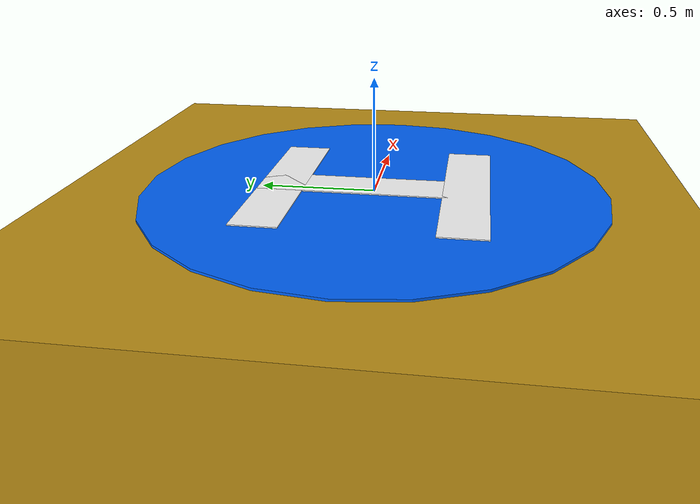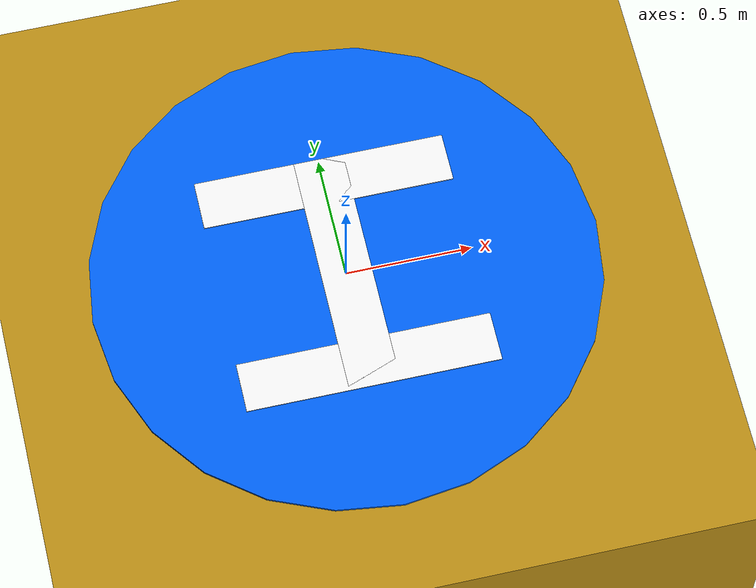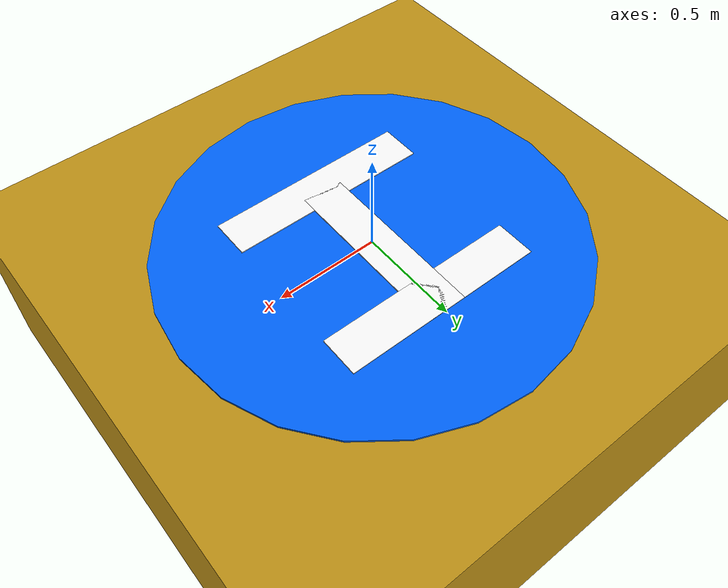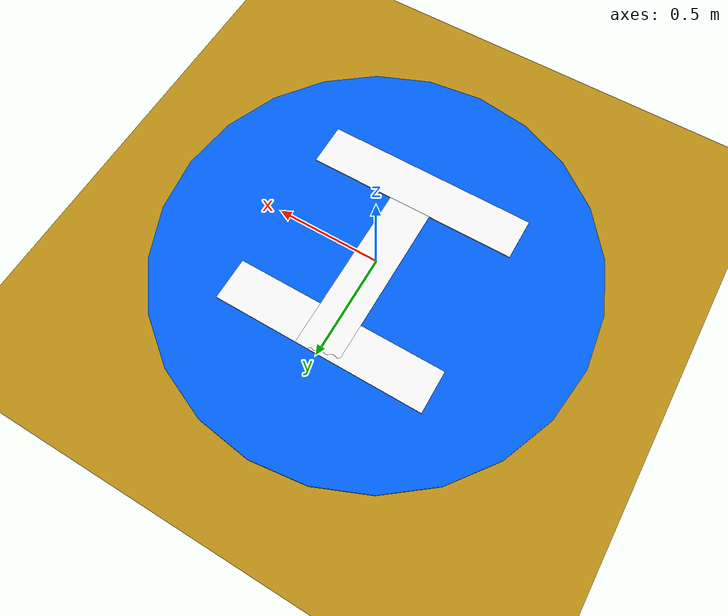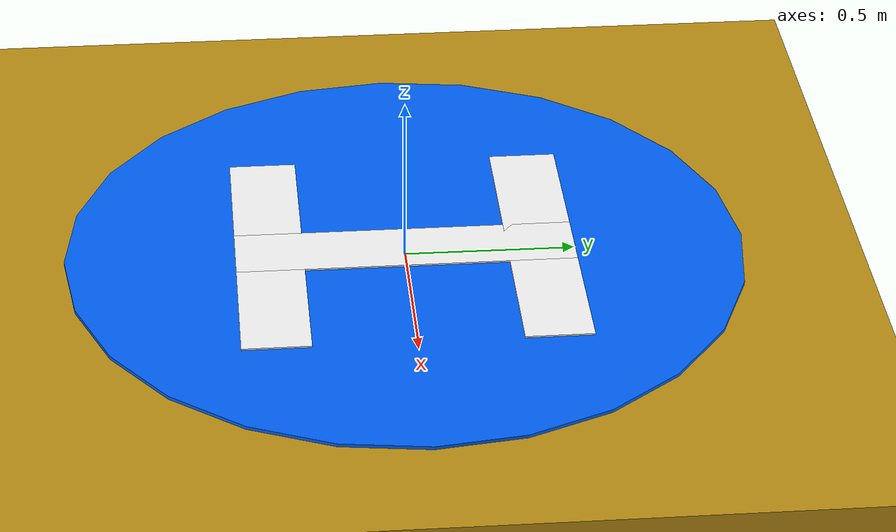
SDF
<?xml version="1.0" ?>
<sdf version="1.6">

<world name="tatami world">

<!-- Area -->
<scene>
    <ambient>0.5 0.5 0.5 1.0</ambient>
    <shadows>true</shadows>
    <origin_visual>false</origin_visual>
</scene>

<plugin name="World" filename="libWorld.so" />

<!-- iluminación básica -->
<include>
    <uri>model://sun</uri>
</include>

<!-- Area de juego -->
<include>
    <name>floor</name>
    <uri>../models/DC/floor</uri>
</include>
<include>
    <name>tatami</name>
    <pose>0 0 -0.49 0 0 0</pose>
    <uri>../models/DC/tatami</uri>
</include>

<include>
    <name>vertiport</name>
    <pose>0 0 0 0 0 0</pose>
    <uri>../models/UAM/vertiport_H</uri>
</include>

<!-- Lights -->

<!-- Own physics settings to speed up simulation -->
<physics type='ode'>

    <max_step_size>0.01</max_step_size>
    <!-- default: 0.001 segundos simulados / paso de simulación -->

    <real_time_update_rate>100</real_time_update_rate>
    <!-- default: 1000 ciclos de simulación / segundo real -->

</physics>

<!-- Interface -->
<gui fullscreen='0'>
    <camera name='user_camera'>

      <pose>10 -11 3 0 0.2 2.3</pose>

      <view_controller>orbit</view_controller>

    </camera>
</gui>

<!-- Coordinates -->

</world>
</sdf>

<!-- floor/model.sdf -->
<sdf version="1.5">

<model name="ground_plane">

<static>true</static>

<link name="link">

  <collision name="collision">

    <geometry>
      <plane>
        <normal>0 0 1</normal>
        <size>200 200</size>
      </plane>
    </geometry>

    <surface>
      <friction>
        <ode>
          <mu>100.0</mu>
          <mu2>50.0</mu2>
          <slip1>0.0</slip1>
          <slip2>0.0</slip2>
        </ode>
      </friction>
    </surface>

  </collision>

  <visual name="visual">

    <cast_shadows>true</cast_shadows>

    <geometry>
      <plane>
        <normal>0 0 1</normal>
        <size>200 200</size>
      </plane>
    </geometry>
    <material>
        <ambient>0.5 0.5 0.5 1</ambient>
        <diffuse>0.5 0.5 0.5 1</diffuse>
    </material>

  </visual>

</link>

</model>
</sdf>

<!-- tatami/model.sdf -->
<sdf version="1.7">

<model name="tatami_model">

  <static>true</static>

  <link name="link">

    <collision name="collision">

      <geometry>
        <box>
          <size>10 10 1</size>
        </box>
      </geometry>

      <surface>
        <friction>
          <ode>
            <mu>100.0</mu>
            <mu2>50.0</mu2>
            <slip1>0.0</slip1>
            <slip2>0.0</slip2>
          </ode>
        </friction>
      </surface>

    </collision>

    <visual name="visual">

      <cast_shadows>true</cast_shadows>

      <geometry>
        <box>
          <size>10 10 1</size>
        </box>
      </geometry>
      <material>
          <ambient>0.76 0.58 0.09 1</ambient>
          <diffuse>0.76 0.58 0.09 1</diffuse>
      </material>

    </visual>

  </link>

</model>
</sdf>

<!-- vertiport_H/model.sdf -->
<sdf version="1.7">

<model name="VertiPort">

<static>true</static>

<link name='link'>

<visual name='barra_izq'>
    <pose>0 -0.4 0.02 0 0 0</pose>
    <geometry>
      <box>
        <size>1 .2 .01</size>
      </box>
    </geometry>
    <material>
      <ambient>1 1 1 1</ambient>
      <diffuse>1 1 1 1</diffuse>
    </material>
</visual>

<visual name='barra_der'>
  <pose>0 0.4 0.02 0 0 0</pose>
  <geometry>
    <box>
      <size>1 .2 .01</size>
    </box>
  </geometry>
  <material>
    <ambient>1 1 1 1</ambient>
    <diffuse>1 1 1 1</diffuse>
  </material>
</visual>

<visual name='travesanho'>
  <pose>0 0 0.02 0 0 0</pose>
  <geometry>
    <box>
      <size>.2 1 .01</size>
    </box>
  </geometry>
  <material>
    <ambient>1 1 1 1</ambient>
    <diffuse>1 1 1 1</diffuse>
  </material>
</visual>

<visual name="circulo">
    <pose>0 0 -0.03 0 0 0</pose>
    <geometry>
        <cylinder>
            <radius>1</radius>
            <length>.1</length>
        </cylinder>
    </geometry>
    <material>
        <ambient>0 0.4 1 1</ambient>  <!--color Red Green Blue Alpha [0-1] -->
        <diffuse>0 0.4 1 1</diffuse>
    </material>
</visual>

<collision name="circulo_col">
    <pose>0 0 -0.03 0 0 0</pose>
    <geometry>
        <cylinder>
            <radius>1</radius>
            <length>.1</length>
        </cylinder>
    </geometry>
    <surface>
        <friction>
            <ode>
            <mu>100.0</mu>
            <mu2>50.0</mu2>
            <slip1>1.0</slip1>
            <slip2>1.0</slip2>
            </ode>
        </friction>
    </surface>
</collision>

</link>

</model>

</sdf>
